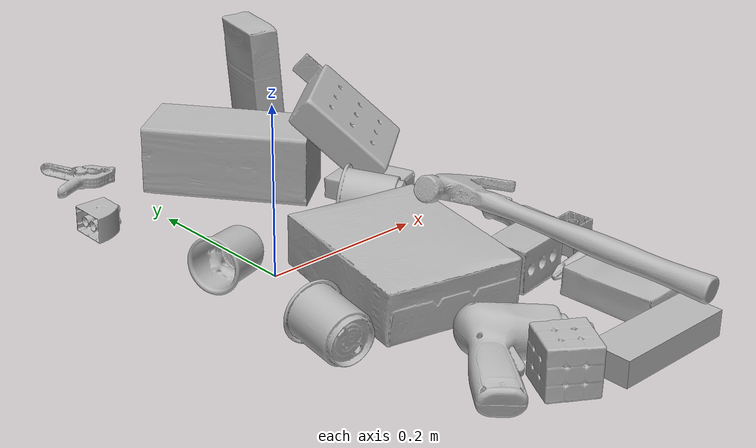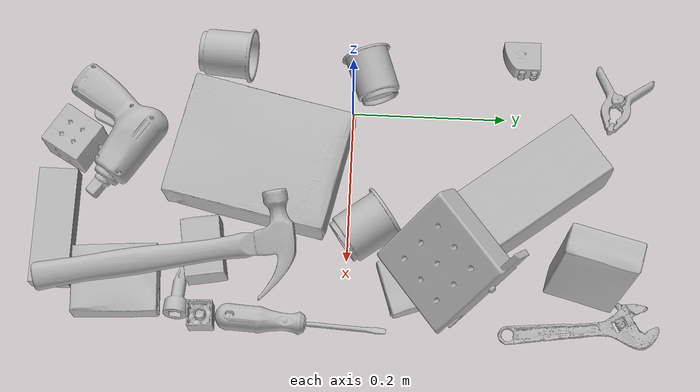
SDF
<sdf version="1.4">
  <world name="default">
    <light name="light1" type="point">
      <pose>0 0 1 0 0 0</pose>
      <diffuse>3 3 3 1</diffuse>
      <specular>3 3 3 1</specular>
    </light>
    <light name="light2" type="point">
      <pose>0 0.5 2 0 0 0</pose>
      <diffuse>1 1 1 1</diffuse>
      <specular>1 1 1 1</specular>
    </light>
    <light name="light3" type="point">
      <pose>0 0.5 2 0 0 0</pose>
      <diffuse>3 3 3 1</diffuse>
      <specular>3 3 3 1</specular>
    </light>
    <scene>
      <ambient>0.7 0.7 0.7</ambient>
    </scene>
    <model name="box21">
      <link name="link_box21">
        <collision name="default">
          <geometry>
            <mesh>
              <uri>model://cracker_box/collision_meshes/collision.obj</uri>
              <scale>1.0 1.0 1.0</scale>
            </mesh>
          </geometry>
          <surface>
            <friction>
              <ode>
                <mu>0.5</mu>
                <mu2>0.5</mu2>
              </ode>
            </friction>
          <contact>
        <ode>
            <max_vel>0</max_vel>
            <min_depth>0.0001</min_depth>
            <kp>1e8</kp>
        </ode>
    </contact></surface>
        </collision>
        <visual name="default">
          <geometry>
            <mesh>
              <uri>model://cracker_box/visual_meshes/visual.dae</uri>
              <scale>1.0 1.0 1.0</scale>
            </mesh>
          </geometry>
        </visual>
        <inertial>
          <mass>2.732837677001953</mass>
          <pose>0.000946416228543967 0.0002543424488976598 -0.0017029533628374338 -0.00031620734042352985 -0.011106490532052917 0.002546795466230165</pose>
          <inertia>
            <ixx>0.0069511193</ixx>
            <iyy>0.011477663</iyy>
            <izz>0.01637968</izz>
            <ixy>0</ixy>
            <ixz>0</ixz>
            <iyz>0</iyz>
          </inertia>
        </inertial>
      </link>
      <pose>0.07645934820175171 -0.1160084679722786 0.035531383007764816 3.1372018383796547 -0.016543642796087717 1.3561550726851017</pose>
    </model>
    <model name="box22">
      <link name="link_box22">
        <collision name="default">
          <geometry>
            <mesh>
              <uri>model://jenga/collision_meshes/collision.obj</uri>
              <scale>1.0 1.0 1.0</scale>
            </mesh>
          </geometry>
          <surface>
            <friction>
              <ode>
                <mu>0.5</mu>
                <mu2>0.5</mu2>
              </ode>
            </friction>
          <contact>
        <ode>
            <max_vel>0</max_vel>
            <min_depth>0.0001</min_depth>
            <kp>1e8</kp>
        </ode>
    </contact></surface>
        </collision>
        <visual name="default">
          <geometry>
            <mesh>
              <uri>model://jenga/visual_meshes/visual.dae</uri>
              <scale>1.0 1.0 1.0</scale>
            </mesh>
          </geometry>
        </visual>
        <inertial>
          <mass>0.1563216596841812</mass>
          <pose>-2.502855807051674e-07 -0.00010250010382151231 -4.0923401684267446e-05 0.0 -7.34215461761844e-07 0.0</pose>
          <inertia>
            <ixx>4.3258e-05</ixx>
            <iyy>0.000293115</iyy>
            <izz>0.0003129252</izz>
            <ixy>0</ixy>
            <ixz>0</ixz>
            <iyz>0</iyz>
          </inertia>
        </inertial>
      </link>
      <pose>0.17485395073890686 -0.3747319281101227 0.014999995008111 -9.007108381765282e-09 9.119687499625153e-09 3.1411540031009015</pose>
    </model>
    <model name="box23">
      <link name="link_box23">
        <collision name="default">
          <geometry>
            <mesh>
              <uri>model://pudding_box/collision_meshes/collision.obj</uri>
              <scale>1.0 1.0 1.0</scale>
            </mesh>
          </geometry>
          <surface>
            <friction>
              <ode>
                <mu>0.5</mu>
                <mu2>0.5</mu2>
              </ode>
            </friction>
          <contact>
        <ode>
            <max_vel>0</max_vel>
            <min_depth>0.0001</min_depth>
            <kp>1e8</kp>
        </ode>
    </contact></surface>
        </collision>
        <visual name="default">
          <geometry>
            <mesh>
              <uri>model://pudding_box/visual_meshes/visual.dae</uri>
              <scale>1.0 1.0 1.0</scale>
            </mesh>
          </geometry>
        </visual>
        <inertial>
          <mass>0.32993465662002563</mass>
          <pose>0.0004894821904599667 0.0008067885064519942 -0.0005188827635720372 0.005213102236317791 -0.0066038015122011 0.020079823288174207</pose>
          <inertia>
            <ixx>0.00037297411</ixx>
            <iyy>0.00025093966</iyy>
            <izz>0.0005507938</izz>
            <ixy>0</ixy>
            <ixz>0</ixz>
            <iyz>0</iyz>
          </inertia>
        </inertial>
      </link>
      <pose>0.24089758098125458 -0.290518194437027 0.018686020746827126 -3.141590513997634 1.047660169696149e-05 0.05791794250075587</pose>
    </model>
    <model name="cup1">
      <link name="link_cup1">
        <collision name="default">
          <geometry>
            <mesh>
              <uri>model://c_cups/collision_meshes/collision.obj</uri>
              <scale>1.0 1.0 1.0</scale>
            </mesh>
          </geometry>
          <surface>
            <friction>
              <ode>
                <mu>0.5</mu>
                <mu2>0.5</mu2>
              </ode>
            </friction>
          <contact>
        <ode>
            <max_vel>0</max_vel>
            <min_depth>0.0001</min_depth>
            <kp>1e8</kp>
        </ode>
    </contact></surface>
        </collision>
        <visual name="default">
          <geometry>
            <mesh>
              <uri>model://c_cups/visual_meshes/visual.dae</uri>
              <scale>1.0 1.0 1.0</scale>
            </mesh>
          </geometry>
        </visual>
        <inertial>
          <mass>0.05159630998969078</mass>
          <pose>0.0007237254758365452 0.0020153908990323544 -0.001275097718462348 0.3021575981944983 0.01346171900925468 -0.08771841488334552</pose>
          <inertia>
            <ixx>3.8371487e-05</ixx>
            <iyy>3.7693397e-05</iyy>
            <izz>3.3934528e-05</izz>
            <ixy>0</ixy>
            <ixz>0</ixz>
            <iyz>0</iyz>
          </inertia>
        </inertial>
      </link>
      <pose>-0.0440773144364357 0.024143356829881668 0.029959991574287415 -1.488303407793607 -0.26214325253877874 1.8947830586624914</pose>
    </model>
    <model name="cup2">
      <link name="link_cup2">
        <collision name="default">
          <geometry>
            <mesh>
              <uri>model://d_cups/collision_meshes/collision.obj</uri>
              <scale>1.0 1.0 1.0</scale>
            </mesh>
          </geometry>
          <surface>
            <friction>
              <ode>
                <mu>0.5</mu>
                <mu2>0.5</mu2>
              </ode>
            </friction>
          <contact>
        <ode>
            <max_vel>0</max_vel>
            <min_depth>0.0001</min_depth>
            <kp>1e8</kp>
        </ode>
    </contact></surface>
        </collision>
        <visual name="default">
          <geometry>
            <mesh>
              <uri>model://d_cups/visual_meshes/visual.dae</uri>
              <scale>1.0 1.0 1.0</scale>
            </mesh>
          </geometry>
        </visual>
        <inertial>
          <mass>0.029099034145474434</mass>
          <pose>0.0008068051538430154 0.0019117402844130993 -0.0022666510194540024 0.24013101341738077 -0.2470893725106806 0.5942204262094062</pose>
          <inertia>
            <ixx>2.436274e-05</ixx>
            <iyy>2.429223e-05</iyy>
            <izz>2.2052422e-05</izz>
            <ixy>0</ixy>
            <ixz>0</ixz>
            <iyz>0</iyz>
          </inertia>
        </inertial>
      </link>
      <pose>-0.06577588617801666 -0.16706891357898712 0.03231110796332359 1.485986075170061 -0.32804028179336775 3.0712217186920134</pose>
    </model>
    <model name="box11">
      <link name="link_box11">
        <collision name="default">
          <geometry>
            <mesh>
              <uri>model://sugar_box/collision_meshes/collision.obj</uri>
              <scale>1.0 1.0 1.0</scale>
            </mesh>
          </geometry>
          <surface>
            <friction>
              <ode>
                <mu>0.5</mu>
                <mu2>0.5</mu2>
              </ode>
            </friction>
          <contact>
        <ode>
            <max_vel>0</max_vel>
            <min_depth>0.0001</min_depth>
            <kp>1e8</kp>
        </ode>
    </contact></surface>
        </collision>
        <visual name="default">
          <geometry>
            <mesh>
              <uri>model://sugar_box/visual_meshes/visual.dae</uri>
              <scale>1.0 1.0 1.0</scale>
            </mesh>
          </geometry>
        </visual>
        <inertial>
          <mass>0.6083751916885376</mass>
          <pose>0.0010343727190047503 3.849109634757042e-05 -0.00036364805418998003 -0.00040462662026216373 0.00105066363904409 0.002615379021562279</pose>
          <inertia>
            <ixx>0.0005068966</ixx>
            <iyy>0.0016383935</iyy>
            <izz>0.0019613528</izz>
            <ixy>0</ixy>
            <ixz>0</ixz>
            <iyz>0</iyz>
          </inertia>
        </inertial>
      </link>
      <pose>0.21721148490905762 0.3017987012863159 0.08857881277799606 -0.2217845205169809 1.4991425639828546 -0.47341522549781945</pose>
    </model>
    <model name="box12">
      <link name="link_box12">
        <collision name="default">
          <geometry>
            <mesh>
              <uri>model://wood_block/collision_meshes/collision.obj</uri>
              <scale>1.0 1.0 1.0</scale>
            </mesh>
          </geometry>
          <surface>
            <friction>
              <ode>
                <mu>0.5</mu>
                <mu2>0.5</mu2>
              </ode>
            </friction>
          <contact>
        <ode>
            <max_vel>0</max_vel>
            <min_depth>0.0001</min_depth>
            <kp>1e8</kp>
        </ode>
    </contact></surface>
        </collision>
        <visual name="default">
          <geometry>
            <mesh>
              <uri>model://wood_block/visual_meshes/visual.dae</uri>
              <scale>1.0 1.0 1.0</scale>
            </mesh>
          </geometry>
        </visual>
        <inertial>
          <mass>1.904224157333374</mass>
          <pose>-5.813315510749817e-06 -0.000570809468626976 0.0002640858292579651 -0.05220878944738684 -0.005192694452018099 -0.006861378422653873</pose>
          <inertia>
            <ixx>0.00254814</ixx>
            <iyy>0.008049577</iyy>
            <izz>0.008019466</izz>
            <ixy>0</ixy>
            <ixz>0</ixz>
            <iyz>0</iyz>
          </inertia>
        </inertial>
      </link>
      <pose>0.11420102417469025 0.22089527547359467 0.04570063576102257 1.5681300110223209 -0.0069391805813919984 2.224520242459765</pose>
    </model>
    <model name="box13">
      <link name="link_box13">
        <collision name="default">
          <geometry>
            <mesh>
              <uri>model://gelatin_box/collision_meshes/collision.obj</uri>
              <scale>1.0 1.0 1.0</scale>
            </mesh>
          </geometry>
          <surface>
            <friction>
              <ode>
                <mu>0.5</mu>
                <mu2>0.5</mu2>
              </ode>
            </friction>
          <contact>
        <ode>
            <max_vel>0</max_vel>
            <min_depth>0.0001</min_depth>
            <kp>1e8</kp>
        </ode>
    </contact></surface>
        </collision>
        <visual name="default">
          <geometry>
            <mesh>
              <uri>model://gelatin_box/visual_meshes/visual.dae</uri>
              <scale>1.0 1.0 1.0</scale>
            </mesh>
          </geometry>
        </visual>
        <inertial>
          <mass>0.15982484817504883</mass>
          <pose>0.0004319618456065655 0.00011156871187267825 -0.0003640321083366871 -0.001050372093012012 -0.00475581868936722 0.016440559471878533</pose>
          <inertia>
            <ixx>0.000112823305</ixx>
            <iyy>8.0589096e-05</iyy>
            <izz>0.0001717422</izz>
            <ixy>0</ixy>
            <ixz>0</ixz>
            <iyz>0</iyz>
          </inertia>
        </inertial>
      </link>
      <pose>0.22455498576164246 0.09030444175004959 0.015167473815381527 0.0055268701054261155 -0.007272858572021134 0.315431796707304</pose>
    </model>
    <model name="box14">
      <link name="link_box14">
        <collision name="default">
          <geometry>
            <mesh>
              <uri>model://rubiks_cube/collision_meshes/collision.obj</uri>
              <scale>1.0 1.0 1.0</scale>
            </mesh>
          </geometry>
          <surface>
            <friction>
              <ode>
                <mu>0.5</mu>
                <mu2>0.5</mu2>
              </ode>
            </friction>
          <contact>
        <ode>
            <max_vel>0</max_vel>
            <min_depth>0.0001</min_depth>
            <kp>1e8</kp>
        </ode>
    </contact></surface>
        </collision>
        <visual name="default">
          <geometry>
            <mesh>
              <uri>model://rubiks_cube/visual_meshes/visual.dae</uri>
              <scale>1.0 1.0 1.0</scale>
            </mesh>
          </geometry>
        </visual>
        <inertial>
          <mass>0.19606205821037292</mass>
          <pose>2.6721043468569405e-05 5.256967051536776e-05 -7.264316536748083e-06 -0.05467227514375443 -0.09814085307594407 -0.03445353526761094</pose>
          <inertia>
            <ixx>0.00010833746</ixx>
            <iyy>0.000107832224</iyy>
            <izz>0.00010923522</izz>
            <ixy>0</ixy>
            <ixz>0</ixz>
            <iyz>0</iyz>
          </inertia>
        </inertial>
      </link>
      <pose>0.05868805944919586 -0.35672253370285034 0.02917894907295704 -2.4437719760068335 -1.5547344272800185 -1.2340000516366085</pose>
    </model>
    <model name="cup15">
      <link name="link_cup15">
        <collision name="default">
          <geometry>
            <mesh>
              <uri>model://e_cups/collision_meshes/collision.obj</uri>
              <scale>1.0 1.0 1.0</scale>
            </mesh>
          </geometry>
          <surface>
            <friction>
              <ode>
                <mu>0.5</mu>
                <mu2>0.5</mu2>
              </ode>
            </friction>
          <contact>
        <ode>
            <max_vel>0</max_vel>
            <min_depth>0.0001</min_depth>
            <kp>1e8</kp>
        </ode>
    </contact></surface>
        </collision>
        <visual name="default">
          <geometry>
            <mesh>
              <uri>model://e_cups/visual_meshes/visual.dae</uri>
              <scale>1.0 1.0 1.0</scale>
            </mesh>
          </geometry>
        </visual>
        <inertial>
          <mass>0.09305236488580704</mass>
          <pose>0.0011355740716680884 0.0028797851409763098 -0.003882972989231348 0.6952374393777071 0.08767548394821409 -0.5235242886817723</pose>
          <inertia>
            <ixx>8.204892e-05</ixx>
            <iyy>8.5752865e-05</iyy>
            <izz>7.844823e-05</izz>
            <ixy>0</ixy>
            <ixz>0</ixz>
            <iyz>0</iyz>
          </inertia>
        </inertial>
      </link>
      <pose>0.1628633439540863 0.021155618131160736 0.035020895302295685 1.1585144027460055 1.3429614534709458 -2.92557399470613</pose>
    </model>
    <model name="toy1">
      <link name="link_toy1">
        <collision name="default">
          <geometry>
            <mesh>
              <uri>model://foam_brick/collision_meshes/collision.obj</uri>
              <scale>1.0 1.0 1.0</scale>
            </mesh>
          </geometry>
          <surface>
            <friction>
              <ode>
                <mu>0.5</mu>
                <mu2>0.5</mu2>
              </ode>
            </friction>
          <contact>
        <ode>
            <max_vel>0</max_vel>
            <min_depth>0.0001</min_depth>
            <kp>1e8</kp>
        </ode>
    </contact></surface>
        </collision>
        <visual name="default">
          <geometry>
            <mesh>
              <uri>model://foam_brick/visual_meshes/visual.dae</uri>
              <scale>1.0 1.0 1.0</scale>
            </mesh>
          </geometry>
        </visual>
        <inertial>
          <mass>0.27397871017456055</mass>
          <pose>-0.0002522472059354186 0.0003458441060502082 -0.00025321010616607964 -0.2940210021807357 0.01727444677850634 -0.0007449878009638903</pose>
          <inertia>
            <ixx>0.00011967903</ixx>
            <iyy>0.00019107372</iyy>
            <izz>0.00019350204</izz>
            <ixy>0</ixy>
            <ixz>0</ixz>
            <iyz>0</iyz>
          </inertia>
        </inertial>
      </link>
      <pose>0.19849620759487152 -0.18146096169948578 0.026264909654855728 -1.5819408668542723 -0.012738453293554811 -2.9889705986578665</pose>
    </model>
    <model name="toy2">
      <link name="link_toy2">
        <collision name="default">
          <geometry>
            <mesh>
              <uri>model://b_toy_airplane/collision_meshes/collision.obj</uri>
              <scale>1.0 1.0 1.0</scale>
            </mesh>
          </geometry>
          <surface>
            <friction>
              <ode>
                <mu>0.5</mu>
                <mu2>0.5</mu2>
              </ode>
            </friction>
          <contact>
        <ode>
            <max_vel>0</max_vel>
            <min_depth>0.0001</min_depth>
            <kp>1e8</kp>
        </ode>
    </contact></surface>
        </collision>
        <visual name="default">
          <geometry>
            <mesh>
              <uri>model://b_toy_airplane/visual_meshes/visual.dae</uri>
              <scale>1.0 1.0 1.0</scale>
            </mesh>
          </geometry>
        </visual>
        <inertial>
          <mass>0.24932990968227386</mass>
          <pose>0.005081362556666136 0.004015582613646984 0.00954306498169899 -0.04001809188182278 -0.04022184417958596 -0.5601502893643007</pose>
          <inertia>
            <ixx>0.0004628856</ixx>
            <iyy>0.00018501986</iyy>
            <izz>0.00057587575</izz>
            <ixy>0</ixy>
            <ixz>0</ixz>
            <iyz>0</iyz>
          </inertia>
        </inertial>
      </link>
      <pose>0.03643262758851051 -0.2972159683704376 0.01697787269949913 0.18487651758994766 0.1134992084817016 -0.6163893140739923</pose>
    </model>
    <model name="toy3">
      <link name="link_toy3">
        <collision name="default">
          <geometry>
            <mesh>
              <uri>model://f_lego_duplo/collision_meshes/collision.obj</uri>
              <scale>1.0 1.0 1.0</scale>
            </mesh>
          </geometry>
          <surface>
            <friction>
              <ode>
                <mu>0.5</mu>
                <mu2>0.5</mu2>
              </ode>
            </friction>
          <contact>
        <ode>
            <max_vel>0</max_vel>
            <min_depth>0.0001</min_depth>
            <kp>1e8</kp>
        </ode>
    </contact></surface>
        </collision>
        <visual name="default">
          <geometry>
            <mesh>
              <uri>model://f_lego_duplo/visual_meshes/visual.dae</uri>
              <scale>1.0 1.0 1.0</scale>
            </mesh>
          </geometry>
        </visual>
        <inertial>
          <mass>0.027739444747567177</mass>
          <pose>2.369416324654594e-05 0.00013393194240052253 0.0018837876850739121 0.02983859902212722 -0.014425048030447486 -0.6756637170693943</pose>
          <inertia>
            <ixx>5.8614983e-06</ixx>
            <iyy>5.913718e-06</iyy>
            <izz>5.0880294e-06</izz>
            <ixy>0</ixy>
            <ixz>0</ixz>
            <iyz>0</iyz>
          </inertia>
        </inertial>
      </link>
      <pose>0.2825840413570404 -0.17977163195610046 0.02187110111117363 3.1415902887958995 4.103744733861196e-05 1.6288181251489473</pose>
    </model>
    <model name="toy4">
      <link name="link_toy4">
        <collision name="default">
          <geometry>
            <mesh>
              <uri>model://d_toy_airplane/collision_meshes/collision.obj</uri>
              <scale>1.0 1.0 1.0</scale>
            </mesh>
          </geometry>
          <surface>
            <friction>
              <ode>
                <mu>0.5</mu>
                <mu2>0.5</mu2>
              </ode>
            </friction>
          <contact>
        <ode>
            <max_vel>0</max_vel>
            <min_depth>0.0001</min_depth>
            <kp>1e8</kp>
        </ode>
    </contact></surface>
        </collision>
        <visual name="default">
          <geometry>
            <mesh>
              <uri>model://d_toy_airplane/visual_meshes/visual.dae</uri>
              <scale>1.0 1.0 1.0</scale>
            </mesh>
          </geometry>
        </visual>
        <inertial>
          <mass>0.018694162368774414</mass>
          <pose>9.410315396962687e-05 -5.80932610318996e-05 -0.011728095822036266 0.0002670379770250361 0.004678992469792915 0.5194762078456472</pose>
          <inertia>
            <ixx>5.6041463e-06</ixx>
            <iyy>5.6083722e-06</iyy>
            <izz>1.6919282e-06</izz>
            <ixy>0</ixy>
            <ixz>0</ixz>
            <iyz>0</iyz>
          </inertia>
        </inertial>
      </link>
      <pose>0.24961814284324646 -0.2113969475030899 0.011027170345187187 -2.492384929309309 -1.2757760963272218 2.422894668535483</pose>
    </model>
    <model name="toy5">
      <link name="link_toy5">
        <collision name="default">
          <geometry>
            <mesh>
              <uri>model://d_lego_duplo/collision_meshes/collision.obj</uri>
              <scale>1.0 1.0 1.0</scale>
            </mesh>
          </geometry>
          <surface>
            <friction>
              <ode>
                <mu>0.5</mu>
                <mu2>0.5</mu2>
              </ode>
            </friction>
          <contact>
        <ode>
            <max_vel>0</max_vel>
            <min_depth>0.0001</min_depth>
            <kp>1e8</kp>
        </ode>
    </contact></surface>
        </collision>
        <visual name="default">
          <geometry>
            <mesh>
              <uri>model://d_lego_duplo/visual_meshes/visual.dae</uri>
              <scale>1.0 1.0 1.0</scale>
            </mesh>
          </geometry>
        </visual>
        <inertial>
          <mass>0.04560890793800354</mass>
          <pose>0.0028305635787546635 0.00016366137424483895 0.0008589806966483593 0.08010848326521293 -0.38355231288211744 0.0010296590748680565</pose>
          <inertia>
            <ixx>8.829212e-06</ixx>
            <iyy>1.253105e-05</iyy>
            <izz>1.2084434e-05</izz>
            <ixy>0</ixy>
            <ixz>0</ixz>
            <iyz>0</iyz>
          </inertia>
        </inertial>
      </link>
      <pose>-0.07750201225280762 0.21977181732654572 0.0162496417760849 1.5793369937393549 -0.0131192551726702 1.5754783036101836</pose>
    </model>
    <model name="toy6">
      <link name="link_toy6">
        <collision name="default">
          <geometry>
            <mesh>
              <uri>model://nine_hole_peg_test/collision_meshes/collision.obj</uri>
              <scale>1.0 1.0 1.0</scale>
            </mesh>
          </geometry>
          <surface>
            <friction>
              <ode>
                <mu>0.5</mu>
                <mu2>0.5</mu2>
              </ode>
            </friction>
          <contact>
        <ode>
            <max_vel>0</max_vel>
            <min_depth>0.0001</min_depth>
            <kp>1e8</kp>
        </ode>
    </contact></surface>
        </collision>
        <visual name="default">
          <geometry>
            <mesh>
              <uri>model://nine_hole_peg_test/visual_meshes/visual.dae</uri>
              <scale>1.0 1.0 1.0</scale>
            </mesh>
          </geometry>
        </visual>
        <inertial>
          <mass>0.9848376512527466</mass>
          <pose>-0.004617386031895876 -0.009647614322602749 2.646068787726108e-05 -0.0014666785927196467 0.0007194180015025765 -0.6342414580933873</pose>
          <inertia>
            <ixx>0.0015399556</ixx>
            <iyy>0.0014378404</iyy>
            <izz>0.0026984566</izz>
            <ixy>0</ixy>
            <ixz>0</ixz>
            <iyz>0</iyz>
          </inertia>
        </inertial>
      </link>
      <pose>0.2126803696155548 0.13110828399658203 0.09298410266637802 0.7216738578807665 -0.025809329536488065 0.6802291550857498</pose>
    </model>
    <model name="hardware1">
      <link name="link_hardware1">
        <collision name="default">
          <geometry>
            <mesh>
              <uri>model://hammer/collision_meshes/collision.obj</uri>
              <scale>1.0 1.0 1.0</scale>
            </mesh>
          </geometry>
          <surface>
            <friction>
              <ode>
                <mu>0.5</mu>
                <mu2>0.5</mu2>
              </ode>
            </friction>
          <contact>
        <ode>
            <max_vel>0</max_vel>
            <min_depth>0.0001</min_depth>
            <kp>1e8</kp>
        </ode>
    </contact></surface>
        </collision>
        <visual name="default">
          <geometry>
            <mesh>
              <uri>model://hammer/visual_meshes/visual.dae</uri>
              <scale>1.0 1.0 1.0</scale>
            </mesh>
          </geometry>
        </visual>
        <inertial>
          <mass>0.19812075793743134</mass>
          <pose>0.009415780194103718 -0.011892358772456646 -0.00012350631004665047 0.023155553199567438 -0.004792165144826806 -0.012760319769687977</pose>
          <inertia>
            <ixx>8.4865314e-05</ixx>
            <iyy>0.0022996028</iyy>
            <izz>0.0023654876</izz>
            <ixy>0</ixy>
            <ixz>0</ixz>
            <iyz>0</iyz>
          </inertia>
        </inertial>
      </link>
      <pose>0.2264241874217987 -0.21187502145767212 0.06021948158740997 -2.8593274051188615 -0.09674259474539709 1.7462898098375874</pose>
    </model>
    <model name="hardware2">
      <link name="link_hardware2">
        <collision name="default">
          <geometry>
            <mesh>
              <uri>model://medium_clamp/collision_meshes/collision.obj</uri>
              <scale>1.0 1.0 1.0</scale>
            </mesh>
          </geometry>
          <surface>
            <friction>
              <ode>
                <mu>0.5</mu>
                <mu2>0.5</mu2>
              </ode>
            </friction>
          <contact>
        <ode>
            <max_vel>0</max_vel>
            <min_depth>0.0001</min_depth>
            <kp>1e8</kp>
        </ode>
    </contact></surface>
        </collision>
        <visual name="default">
          <geometry>
            <mesh>
              <uri>model://medium_clamp/visual_meshes/visual.dae</uri>
              <scale>1.0 1.0 1.0</scale>
            </mesh>
          </geometry>
        </visual>
        <inertial>
          <mass>0.022759946063160896</mass>
          <pose>0.005390991922467947 0.00039532387745566666 -0.0001222159044118598 -0.0012269199415174078 0.0025845019151957355 0.03820777718195871</pose>
          <inertia>
            <ixx>6.200628e-06</ixx>
            <iyy>9.023669e-06</iyy>
            <izz>1.3899154e-05</izz>
            <ixy>0</ixy>
            <ixz>0</ixz>
            <iyz>0</iyz>
          </inertia>
        </inertial>
      </link>
      <pose>-0.028884820640087128 0.3473457396030426 0.013533873483538628 0.07686124274299211 0.08545893161463639 -0.26790841799641607</pose>
    </model>
    <model name="hardware3">
      <link name="link_hardware3">
        <collision name="default">
          <geometry>
            <mesh>
              <uri>model://flat_screwdriver/collision_meshes/collision.obj</uri>
              <scale>1.0 1.0 1.0</scale>
            </mesh>
          </geometry>
          <surface>
            <friction>
              <ode>
                <mu>0.5</mu>
                <mu2>0.5</mu2>
              </ode>
            </friction>
          <contact>
        <ode>
            <max_vel>0</max_vel>
            <min_depth>0.0001</min_depth>
            <kp>1e8</kp>
        </ode>
    </contact></surface>
        </collision>
        <visual name="default">
          <geometry>
            <mesh>
              <uri>model://flat_screwdriver/visual_meshes/visual.dae</uri>
              <scale>1.0 1.0 1.0</scale>
            </mesh>
          </geometry>
        </visual>
        <inertial>
          <mass>0.09131896495819092</mass>
          <pose>-0.0489187091588974 -0.0006576800951734185 -0.0006140916375443339 -0.5615616021105532 -0.003233725851923771 0.0069822762955213</pose>
          <inertia>
            <ixx>1.0789267e-05</ixx>
            <iyy>0.00013697217</iyy>
            <izz>0.00013690875</izz>
            <ixy>0</ixy>
            <ixz>0</ixz>
            <iyz>0</iyz>
          </inertia>
        </inertial>
      </link>
      <pose>0.28613969683647156 -0.05604829639196396 0.014493195340037346 2.880244315348254 0.035603372330166555 1.532358524069051</pose>
    </model>
    <model name="hardware4">
      <link name="link_hardware4">
        <collision name="default">
          <geometry>
            <mesh>
              <uri>model://adjustable_wrench/collision_meshes/collision.obj</uri>
              <scale>1.0 1.0 1.0</scale>
            </mesh>
          </geometry>
          <surface>
            <friction>
              <ode>
                <mu>0.5</mu>
                <mu2>0.5</mu2>
              </ode>
            </friction>
          <contact>
        <ode>
            <max_vel>0</max_vel>
            <min_depth>0.0001</min_depth>
            <kp>1e8</kp>
        </ode>
    </contact></surface>
        </collision>
        <visual name="default">
          <geometry>
            <mesh>
              <uri>model://adjustable_wrench/visual_meshes/visual.dae</uri>
              <scale>1.0 1.0 1.0</scale>
            </mesh>
          </geometry>
        </visual>
        <inertial>
          <mass>0.023054517805576324</mass>
          <pose>0.03740980476140976 -0.0028968877159059048 -0.0011149226920679212 -0.01447335734168526 0.006656027895675122 -0.010954173130845575</pose>
          <inertia>
            <ixx>4.7184403e-06</ixx>
            <iyy>5.5223813e-05</iyy>
            <izz>5.969163e-05</izz>
            <ixy>0</ixy>
            <ixz>0</ixz>
            <iyz>0</iyz>
          </inertia>
        </inertial>
      </link>
      <pose>0.2743534445762634 0.299746572971344 0.0061250971630215645 0.04676317489464101 -0.02926861367276687 1.6651822020805793</pose>
    </model>
  <physics type="ode">
      <max_contacts>50</max_contacts>
      <ode>
        <solver>
          <type>quick</type>
          <iters>75</iters>
        </solver>
        <constraints>
          <contact_max_correcting_vel>0</contact_max_correcting_vel>
          <contact_surface_layer>0</contact_surface_layer>
        </constraints>
      </ode>
    </physics></world>
</sdf>
